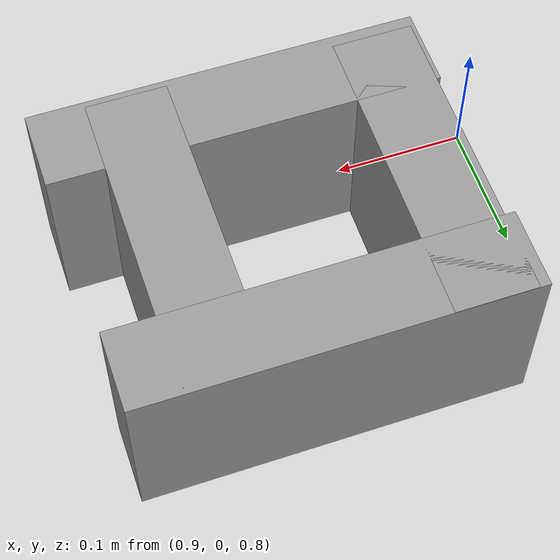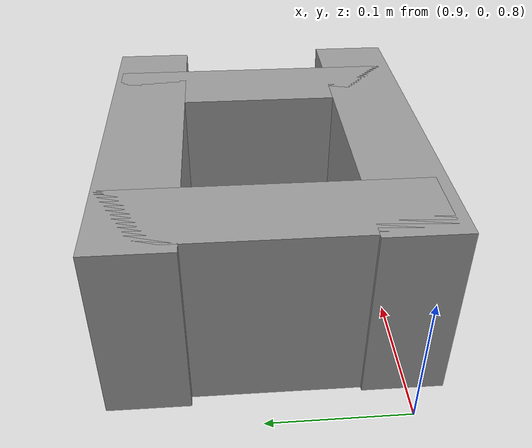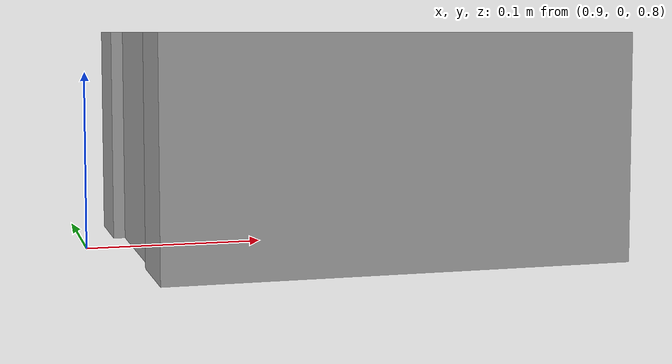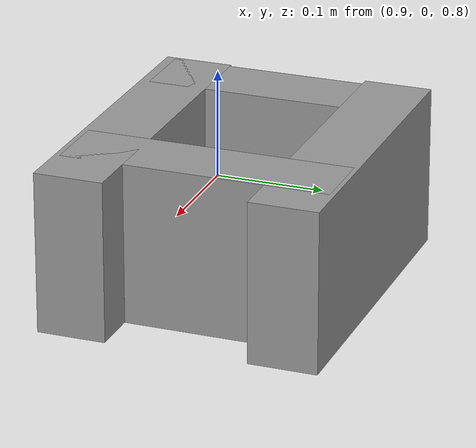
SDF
<?xml version='1.0'?>
<sdf version='1.6'>
  <model name='superBeerCanPusherBeerHolder'>
    <link name='link_0'>
      <pose frame=''>1.08071 -0.003088 0.852092 0 -0 0</pose>
      <inertial>
        <mass>0.00242666</mass>
        <inertia>
          <ixx>4.72285e-06</ixx>
          <ixy>0</ixy>
          <ixz>0</ixz>
          <iyy>2.08009e-05</iyy>
          <iyz>0</iyz>
          <izz>1.75279e-05</izz>
        </inertia>
        <pose frame=''>0 0 0 0 -0 0</pose>
      </inertial>
      <visual name='visual'>
        <pose frame=''>0 0 0 0 -0 0</pose>
        <geometry>
          <box>
            <size>0.288255 0.059876 0.140607</size>
          </box>
        </geometry>
        <material>
          <lighting>1</lighting>
          <script>
            <uri>file://media/materials/scripts/gazebo.material</uri>
            <name>Gazebo/Grey</name>
          </script>
          <ambient>0.3 0.3 0.3 1</ambient>
          <diffuse>0.7 0.7 0.7 1</diffuse>
          <specular>0.01 0.01 0.01 1</specular>
          <emissive>0 0 0 1</emissive>
        </material>
        <cast_shadows>1</cast_shadows>
        <transparency>0</transparency>
      </visual>
      <collision name='collision'>
        <laser_retro>0</laser_retro>
        <max_contacts>10</max_contacts>
        <pose frame=''>0 0 0 0 -0 0</pose>
        <geometry>
          <box>
            <size>0.288255 0.059876 0.140607</size>
          </box>
        </geometry>
        <surface>
          <friction>
            <ode>
              <mu>1</mu>
              <mu2>1</mu2>
              <fdir1>0 0 0</fdir1>
              <slip1>0</slip1>
              <slip2>0</slip2>
            </ode>
            <torsional>
              <coefficient>1</coefficient>
              <patch_radius>0</patch_radius>
              <surface_radius>0</surface_radius>
              <use_patch_radius>1</use_patch_radius>
              <ode>
                <slip>0</slip>
              </ode>
            </torsional>
          </friction>
          <bounce>
            <restitution_coefficient>0</restitution_coefficient>
            <threshold>1e+06</threshold>
          </bounce>
          <contact>
            <collide_without_contact>0</collide_without_contact>
            <collide_without_contact_bitmask>1</collide_without_contact_bitmask>
            <collide_bitmask>1</collide_bitmask>
            <ode>
              <soft_cfm>0</soft_cfm>
              <soft_erp>0.2</soft_erp>
              <kp>1e+13</kp>
              <kd>1</kd>
              <max_vel>0.01</max_vel>
              <min_depth>0</min_depth>
            </ode>
            <bullet>
              <split_impulse>1</split_impulse>
              <split_impulse_penetration_threshold>-0.01</split_impulse_penetration_threshold>
              <soft_cfm>0</soft_cfm>
              <soft_erp>0.2</soft_erp>
              <kp>1e+13</kp>
              <kd>1</kd>
            </bullet>
          </contact>
        </surface>
      </collision>
    </link>
    <link name='link_0_clone'>
      <pose frame=''>1.07589 0.178577 0.852092 0 -0 0</pose>
      <inertial>
        <mass>0.00242666</mass>
        <inertia>
          <ixx>4.72285e-06</ixx>
          <ixy>0</ixy>
          <ixz>0</ixz>
          <iyy>2.08009e-05</iyy>
          <iyz>0</iyz>
          <izz>1.75279e-05</izz>
        </inertia>
        <pose frame=''>0 0 0 0 -0 0</pose>
      </inertial>
      <visual name='visual'>
        <pose frame=''>0 0 0 0 -0 0</pose>
        <geometry>
          <box>
            <size>0.288255 0.059876 0.140607</size>
          </box>
        </geometry>
        <material>
          <lighting>1</lighting>
          <script>
            <uri>file://media/materials/scripts/gazebo.material</uri>
            <name>Gazebo/Grey</name>
          </script>
          <ambient>0.3 0.3 0.3 1</ambient>
          <diffuse>0.7 0.7 0.7 1</diffuse>
          <specular>0.01 0.01 0.01 1</specular>
          <emissive>0 0 0 1</emissive>
          <shader type='pixel'/>
        </material>
        <cast_shadows>1</cast_shadows>
        <transparency>0</transparency>
      </visual>
      <collision name='collision'>
        <laser_retro>0</laser_retro>
        <max_contacts>10</max_contacts>
        <pose frame=''>0 0 0 0 -0 0</pose>
        <geometry>
          <box>
            <size>0.288255 0.059876 0.140607</size>
          </box>
        </geometry>
        <surface>
          <friction>
            <ode>
              <mu>1</mu>
              <mu2>1</mu2>
              <fdir1>0 0 0</fdir1>
              <slip1>0</slip1>
              <slip2>0</slip2>
            </ode>
            <torsional>
              <coefficient>1</coefficient>
              <patch_radius>0</patch_radius>
              <surface_radius>0</surface_radius>
              <use_patch_radius>1</use_patch_radius>
              <ode>
                <slip>0</slip>
              </ode>
            </torsional>
          </friction>
          <bounce>
            <restitution_coefficient>0</restitution_coefficient>
            <threshold>1e+06</threshold>
          </bounce>
          <contact>
            <collide_without_contact>0</collide_without_contact>
            <collide_without_contact_bitmask>1</collide_without_contact_bitmask>
            <collide_bitmask>1</collide_bitmask>
            <ode>
              <soft_cfm>0</soft_cfm>
              <soft_erp>0.2</soft_erp>
              <kp>1e+13</kp>
              <kd>1</kd>
              <max_vel>0.01</max_vel>
              <min_depth>0</min_depth>
            </ode>
            <bullet>
              <split_impulse>1</split_impulse>
              <split_impulse_penetration_threshold>-0.01</split_impulse_penetration_threshold>
              <soft_cfm>0</soft_cfm>
              <soft_erp>0.2</soft_erp>
              <kp>1e+13</kp>
              <kd>1</kd>
            </bullet>
          </contact>
        </surface>
      </collision>
    </link>
    <link name='link_0_clone_0'>
      <pose frame=''>0.969432 0.091755 0.852092 0 -0 1.57072</pose>
      <inertial>
        <mass>0.00196021</mass>
        <inertia>
          <ixx>3.81503e-06</ixx>
          <ixy>0</ixy>
          <ixz>0</ixz>
          <iyy>1.20861e-05</iyy>
          <iyz>0</iyz>
          <izz>9.44219e-06</izz>
        </inertia>
        <pose frame=''>0 0 0 0 -0 0</pose>
      </inertial>
      <visual name='visual'>
        <pose frame=''>0 0 0 0 -0 0</pose>
        <geometry>
          <box>
            <size>0.232847 0.059876 0.140607</size>
          </box>
        </geometry>
        <material>
          <lighting>1</lighting>
          <script>
            <uri>file://media/materials/scripts/gazebo.material</uri>
            <name>Gazebo/Grey</name>
          </script>
          <ambient>0.3 0.3 0.3 1</ambient>
          <diffuse>0.7 0.7 0.7 1</diffuse>
          <specular>0.01 0.01 0.01 1</specular>
          <emissive>0 0 0 1</emissive>
          <shader type='pixel'/>
        </material>
        <cast_shadows>1</cast_shadows>
        <transparency>0</transparency>
      </visual>
      <collision name='collision'>
        <laser_retro>0</laser_retro>
        <max_contacts>10</max_contacts>
        <pose frame=''>0 0 0 0 -0 0</pose>
        <geometry>
          <box>
            <size>0.232847 0.059876 0.140607</size>
          </box>
        </geometry>
        <surface>
          <friction>
            <ode>
              <mu>1</mu>
              <mu2>1</mu2>
              <fdir1>0 0 0</fdir1>
              <slip1>0</slip1>
              <slip2>0</slip2>
            </ode>
            <torsional>
              <coefficient>1</coefficient>
              <patch_radius>0</patch_radius>
              <surface_radius>0</surface_radius>
              <use_patch_radius>1</use_patch_radius>
              <ode>
                <slip>0</slip>
              </ode>
            </torsional>
          </friction>
          <bounce>
            <restitution_coefficient>0</restitution_coefficient>
            <threshold>1e+06</threshold>
          </bounce>
          <contact>
            <collide_without_contact>0</collide_without_contact>
            <collide_without_contact_bitmask>1</collide_without_contact_bitmask>
            <collide_bitmask>1</collide_bitmask>
            <ode>
              <soft_cfm>0</soft_cfm>
              <soft_erp>0.2</soft_erp>
              <kp>1e+13</kp>
              <kd>1</kd>
              <max_vel>0.01</max_vel>
              <min_depth>0</min_depth>
            </ode>
            <bullet>
              <split_impulse>1</split_impulse>
              <split_impulse_penetration_threshold>-0.01</split_impulse_penetration_threshold>
              <soft_cfm>0</soft_cfm>
              <soft_erp>0.2</soft_erp>
              <kp>1e+13</kp>
              <kd>1</kd>
            </bullet>
          </contact>
        </surface>
      </collision>
    </link>
    <link name='link_0_clone_0_clone'>
      <pose frame=''>1.15285 0.087898 0.852092 0 -0 1.57072</pose>
      <inertial>
        <mass>0.00196021</mass>
        <inertia>
          <ixx>3.81503e-06</ixx>
          <ixy>0</ixy>
          <ixz>0</ixz>
          <iyy>1.20861e-05</iyy>
          <iyz>0</iyz>
          <izz>9.44219e-06</izz>
        </inertia>
        <pose frame=''>0 0 0 0 -0 0</pose>
      </inertial>
      <visual name='visual'>
        <pose frame=''>0 0 0 0 -0 0</pose>
        <geometry>
          <box>
            <size>0.232847 0.059876 0.140607</size>
          </box>
        </geometry>
        <material>
          <lighting>1</lighting>
          <script>
            <uri>file://media/materials/scripts/gazebo.material</uri>
            <name>Gazebo/Grey</name>
          </script>
          <ambient>0.3 0.3 0.3 1</ambient>
          <diffuse>0.7 0.7 0.7 1</diffuse>
          <specular>0.01 0.01 0.01 1</specular>
          <emissive>0 0 0 1</emissive>
          <shader type='pixel'/>
        </material>
        <cast_shadows>1</cast_shadows>
        <transparency>0</transparency>
      </visual>
      <collision name='collision'>
        <laser_retro>0</laser_retro>
        <max_contacts>10</max_contacts>
        <pose frame=''>0 0 0 0 -0 0</pose>
        <geometry>
          <box>
            <size>0.232847 0.059876 0.140607</size>
          </box>
        </geometry>
        <surface>
          <friction>
            <ode>
              <mu>1</mu>
              <mu2>1</mu2>
              <fdir1>0 0 0</fdir1>
              <slip1>0</slip1>
              <slip2>0</slip2>
            </ode>
            <torsional>
              <coefficient>1</coefficient>
              <patch_radius>0</patch_radius>
              <surface_radius>0</surface_radius>
              <use_patch_radius>1</use_patch_radius>
              <ode>
                <slip>0</slip>
              </ode>
            </torsional>
          </friction>
          <bounce>
            <restitution_coefficient>0</restitution_coefficient>
            <threshold>1e+06</threshold>
          </bounce>
          <contact>
            <collide_without_contact>0</collide_without_contact>
            <collide_without_contact_bitmask>1</collide_without_contact_bitmask>
            <collide_bitmask>1</collide_bitmask>
            <ode>
              <soft_cfm>0</soft_cfm>
              <soft_erp>0.2</soft_erp>
              <kp>1e+13</kp>
              <kd>1</kd>
              <max_vel>0.01</max_vel>
              <min_depth>0</min_depth>
            </ode>
            <bullet>
              <split_impulse>1</split_impulse>
              <split_impulse_penetration_threshold>-0.01</split_impulse_penetration_threshold>
              <soft_cfm>0</soft_cfm>
              <soft_erp>0.2</soft_erp>
              <kp>1e+13</kp>
              <kd>1</kd>
            </bullet>
          </contact>
        </surface>
      </collision>
    </link>
    <static>0</static>
    <allow_auto_disable>1</allow_auto_disable>
  </model>
</sdf>
